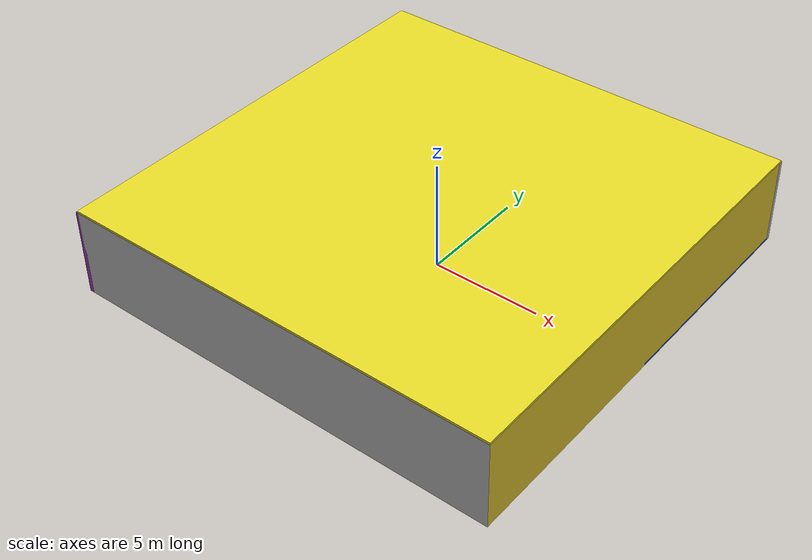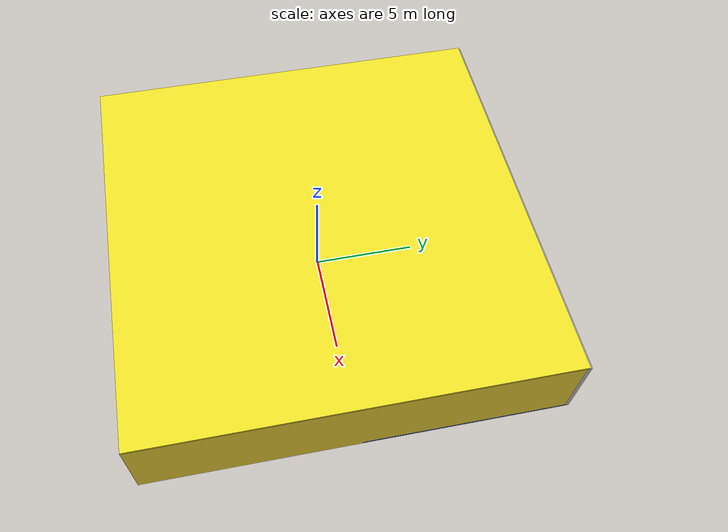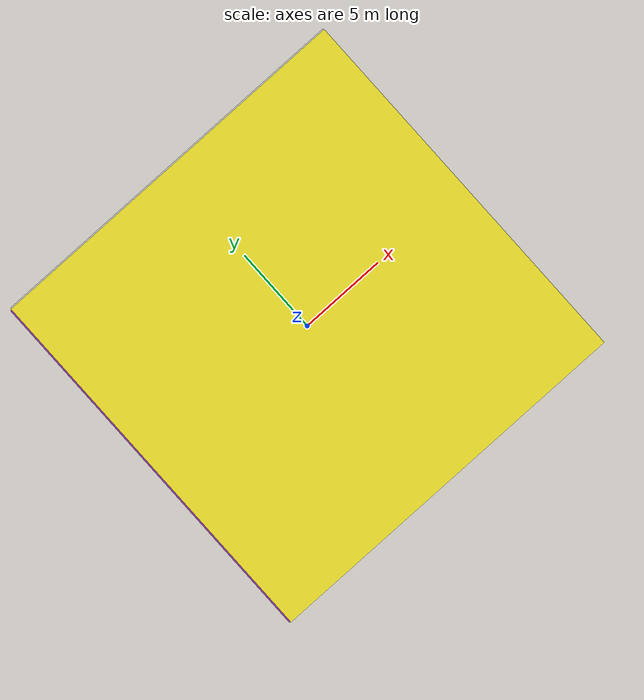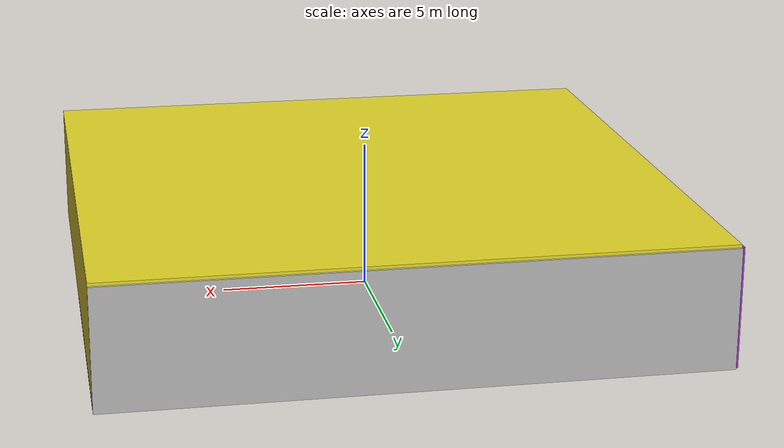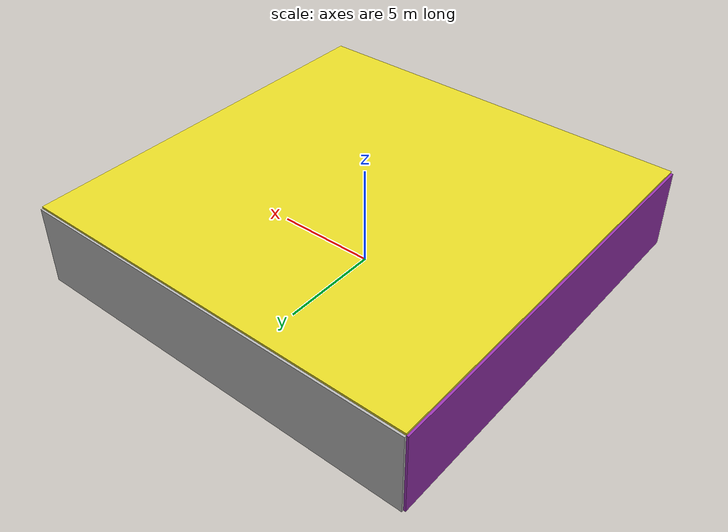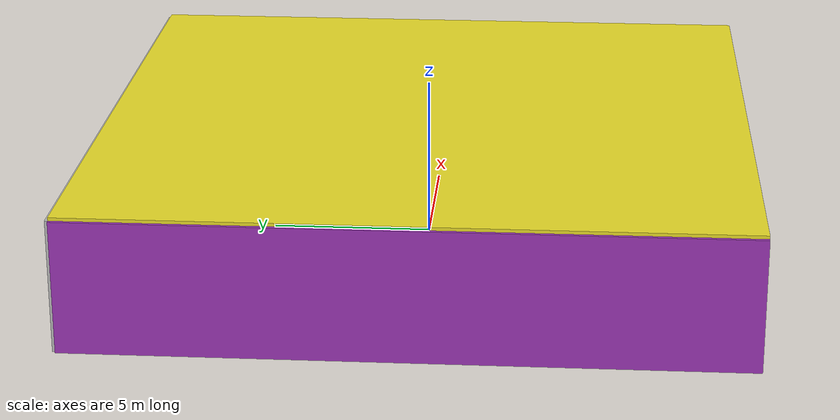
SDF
<sdf version="1.4">
 <world name="default">
  <physics type="ode">
   <max_step_size>0.001</max_step_size>
   <real_time_factor>1</real_time_factor>
   <real_time_update_rate>1000</real_time_update_rate>
   <gravity>0 0 -9.8</gravity>
  </physics>
  <scene><ambient>0.4 0.4 0.4 1</ambient><background>0.7 0.7 0.7 1</background><shadows>1</shadows></scene>
  <model name="Surrounding">
   <static>1</static>
   <link name="Ceiling">
    <collision name="Ceiling_Collision"><geometry><box><size>20 20 0.1</size></box></geometry></collision>
    <visual name="Ceiling_Visual">
     <geometry><box><size>20 20 0.1</size></box></geometry>
     <material>
      <script><uri>file://media/materials/scripts/gazebo.material</uri><name>Gazebo/YellowGlow</name></script>
     </material>
    </visual>
    <pose>0 0 4.05 0 0 0</pose>
   </link>
   <link name="Wall_South">
    <collision name="Wall_South_Collision">
     <geometry><box><size>20 0 4</size></box></geometry>
     <pose>0 0 2 0 -0 0</pose>
    </collision>
    <visual name="Wall_South_Visual">
     <pose>0 0 2 0 -0 0</pose>
     <geometry><box><size>20 0 4</size></box></geometry>
     <material>
      <script><uri>file://media/materials/scripts/gazebo.material</uri><name>Gazebo/PioneerBody</name></script>
     </material>
    </visual>
    <velocity_decay><linear>0</linear><angular>0</angular></velocity_decay>
    <pose>0 -10 0 0 -0 0</pose>
   </link>
   <link name="Wall_East">
    <collision name="Wall_21_Collision">
     <geometry><box><size>20 0 4</size></box></geometry>
     <pose>0 0 2 0 -0 0</pose>
    </collision>
    <visual name="Wall_21_Visual">
     <pose>0 0 2 0 -0 0</pose>
     <geometry><box><size>20 0 4</size></box></geometry>
     <material>
      <script><uri>file://media/materials/scripts/gazebo.material</uri><name>Gazebo/ZincYellow</name></script>
     </material>
    </visual>
    <velocity_decay><linear>0</linear><angular>0</angular></velocity_decay>
    <pose>10 0 0 0 -0 1.5708</pose>
   </link>
   <link name="Wall_North">
    <collision name="Wall_22_Collision">
     <geometry><box><size>20 0.2 4</size></box></geometry>
     <pose>0 0 2 0 -0 0</pose>
    </collision>
    <visual name="Wall_22_Visual">
     <pose>0 0 2 0 -0 0</pose>
     <geometry><box><size>20 0.2 4</size></box></geometry>
     <material>
      <script><uri>file://media/materials/scripts/gazebo.material</uri><name>Gazebo/PioneerBody</name></script>
     </material>
    </visual>
    <velocity_decay><linear>0</linear><angular>0</angular></velocity_decay>
    <pose>0 10 0 0 -0 0</pose>
   </link>
   <link name="Wall_West">
    <collision name="Wall_23_Collision">
     <geometry><box><size>20 0.2 4</size></box></geometry>
     <pose>0 0 2 0 -0 0</pose>
    </collision>
    <visual name="Wall_23_Visual">
     <pose>0 0 2 0 -0 0</pose>
     <geometry><box><size>20 0.2 4</size></box></geometry>
     <material>
      <script><uri>file://media/materials/scripts/gazebo.material</uri><name>Gazebo/PurpleGlow</name></script>
     </material>
    </visual>
    <velocity_decay><linear>0</linear><angular>0</angular></velocity_decay>
    <pose>-10 0 0 0 0 -1.5708</pose>
   </link>
   <link name="Ground_link">
    <collision name="collision">
     <pose>0 0 .05 0 -0 0</pose>
     <geometry><box><size>20 20 0.1</size></box></geometry>
    </collision>
    <visual name="visual">
     <pose>0 0 .05 0 -0 0</pose>
     <geometry><box><size>20 20 0.1</size></box></geometry>
     <material>
      <script><uri>file://media/materials/scripts/gazebo.material</uri><name>Gazebo/BlueGlow</name></script>
     </material>
    </visual>
   </link>
   <static>1</static>
  </model>
  <spherical_coordinates>
   <surface_model>EARTH_WGS84</surface_model>
   <latitude_deg>0</latitude_deg>
   <longitude_deg>0</longitude_deg>
   <elevation>0</elevation>
   <heading_deg>0</heading_deg>
  </spherical_coordinates>
  <light name="lightball_0" type="diffuse">
   <diffuse>0.8 0.8 0.8 1</diffuse>
   <specular>0.2 0.2 0.2 1</specular>
   <attenuation>
    <range>100</range>
    <constant>0.7</constant>
    <linear>0.01</linear>
    <quadratic>0.001</quadratic>
   </attenuation>
   <direction>-0.5 0.1 -0.9</direction>
   <pose>-4.06357872269 4.81119742207 2.45542483714 0 0 0</pose>
  </light>
  <light name="lightball_1" type="diffuse">
   <diffuse>0.8 0.8 0.8 1</diffuse>
   <specular>0.2 0.2 0.2 1</specular>
   <attenuation>
    <range>100</range>
    <constant>0.7</constant>
    <linear>0.01</linear>
    <quadratic>0.001</quadratic>
   </attenuation>
   <direction>-0.5 0.1 -0.9</direction>
   <pose>0.0498239606138 -8.23232550665 2.98327708059 0 0 0</pose>
  </light>
  <light name="lightball_2" type="diffuse">
   <diffuse>0.8 0.8 0.8 1</diffuse>
   <specular>0.2 0.2 0.2 1</specular>
   <attenuation>
    <range>100</range>
    <constant>0.7</constant>
    <linear>0.01</linear>
    <quadratic>0.001</quadratic>
   </attenuation>
   <direction>-0.5 0.1 -0.9</direction>
   <pose>-8.26036727893 2.2744855355 1.04495845208 0 0 0</pose>
  </light>
  <light name="lightball_3" type="diffuse">
   <diffuse>0.8 0.8 0.8 1</diffuse>
   <specular>0.2 0.2 0.2 1</specular>
   <attenuation>
    <range>100</range>
    <constant>0.7</constant>
    <linear>0.01</linear>
    <quadratic>0.001</quadratic>
   </attenuation>
   <direction>-0.5 0.1 -0.9</direction>
   <pose>-2.23651199024 2.16246653985 1.65789242768 0 0 0</pose>
  </light>
  <light name="lightball_4" type="diffuse">
   <diffuse>0.8 0.8 0.8 1</diffuse>
   <specular>0.2 0.2 0.2 1</specular>
   <attenuation>
    <range>100</range>
    <constant>0.7</constant>
    <linear>0.01</linear>
    <quadratic>0.001</quadratic>
   </attenuation>
   <direction>-0.5 0.1 -0.9</direction>
   <pose>-5.21547841118 -7.01531637489 1.51933147181 0 0 0</pose>
  </light>
  <light name="lightball_5" type="diffuse">
   <diffuse>0.8 0.8 0.8 1</diffuse>
   <specular>0.2 0.2 0.2 1</specular>
   <attenuation>
    <range>100</range>
    <constant>0.7</constant>
    <linear>0.01</linear>
    <quadratic>0.001</quadratic>
   </attenuation>
   <direction>-0.5 0.1 -0.9</direction>
   <pose>-1.48083269419 6.2396507713 1.72905396308 0 0 0</pose>
  </light>
  <light name="lightball_6" type="diffuse">
   <diffuse>0.8 0.8 0.8 1</diffuse>
   <specular>0.2 0.2 0.2 1</specular>
   <attenuation>
    <range>100</range>
    <constant>0.7</constant>
    <linear>0.01</linear>
    <quadratic>0.001</quadratic>
   </attenuation>
   <direction>-0.5 0.1 -0.9</direction>
   <pose>6.55010611293 -3.95996402221 3.19540030901 0 0 0</pose>
  </light>
  <include><uri>model://table</uri><pose>-4.47354207421 3.75586034728 0 0 0 1.55868722325</pose></include>
  <include><uri>model://cabinet</uri><pose>-0.959122940419 -8.66726946815 0 0 0 1.40096820306</pose></include>
 </world>
</sdf>

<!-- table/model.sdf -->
<sdf version="1.5">
  <model name="table">
    <static>true</static>
    <link name="link">
      <collision name="surface">
        <pose>0 0 1.0 0 0 0</pose>
        <geometry>
          <box>
            <size>1.5 0.8 0.03</size>
          </box>
        </geometry>
        <surface>
          <friction>
            <ode>
              <mu>0.6</mu>
              <mu2>0.6</mu2>
            </ode>
          </friction>
        </surface>
      </collision>
      <visual name="visual1">
        <pose>0 0 1.0 0 0 0</pose>
        <geometry>
          <box>
            <size>1.5 0.8 0.03</size>
          </box>
        </geometry>
        <material>
          <script>
            <uri>model://media/materials/scripts/gazebo.material</uri>
            <name>Gazebo/Wood</name>
          </script>
        </material>
      </visual>
      <collision name="front_left_leg">
        <pose>0.68 0.38 0.5 0 0 0</pose>
        <geometry>
          <cylinder>
            <radius>0.02</radius>
            <length>1.0</length>
          </cylinder>
        </geometry>
      </collision>
      <visual name="front_left_leg">
        <pose>0.68 0.38 0.5 0 0 0</pose>
        <geometry>
          <cylinder>
            <radius>0.02</radius>
            <length>1.0</length>
          </cylinder>
        </geometry>
        <material>
          <script>
            <uri>model://media/materials/scripts/gazebo.material</uri>
            <name>Gazebo/Grey</name>
          </script>
        </material>
      </visual>
      <collision name="front_right_leg">
        <pose>0.68 -0.38 0.5 0 0 0</pose>
        <geometry>
          <cylinder>
            <radius>0.02</radius>
            <length>1.0</length>
          </cylinder>
        </geometry>
      </collision>
      <visual name="front_right_leg">
        <pose>0.68 -0.38 0.5 0 0 0</pose>
        <geometry>
          <cylinder>
            <radius>0.02</radius>
            <length>1.0</length>
          </cylinder>
        </geometry>
        <material>
          <script>
            <uri>model://media/materials/scripts/gazebo.material</uri>
            <name>Gazebo/Grey</name>
          </script>
        </material>
      </visual>
      <collision name="back_right_leg">
        <pose>-0.68 -0.38 0.5 0 0 0</pose>
        <geometry>
          <cylinder>
            <radius>0.02</radius>
            <length>1.0</length>
          </cylinder>
        </geometry>
      </collision>
      <visual name="back_right_leg">
        <pose>-0.68 -0.38 0.5 0 0 0</pose>
        <geometry>
          <cylinder>
            <radius>0.02</radius>
            <length>1.0</length>
          </cylinder>
        </geometry>
        <material>
          <script>
            <uri>model://media/materials/scripts/gazebo.material</uri>
            <name>Gazebo/Grey</name>
          </script>
        </material>
      </visual>
      <collision name="back_left_leg">
        <pose>-0.68 0.38 0.5 0 0 0</pose>
        <geometry>
          <cylinder>
            <radius>0.02</radius>
            <length>1.0</length>
          </cylinder>
        </geometry>
      </collision>
      <visual name="back_left_leg">
        <pose>-0.68 0.38 0.5 0 0 0</pose>
        <geometry>
          <cylinder>
            <radius>0.02</radius>
            <length>1.0</length>
          </cylinder>
        </geometry>
        <material>
          <script>
            <uri>model://media/materials/scripts/gazebo.material</uri>
            <name>Gazebo/Grey</name>
          </script>
        </material>
      </visual>
    </link>
  </model>
</sdf>

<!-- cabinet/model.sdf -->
<sdf version="1.5">
  <model name="cabinet">
    <static>true</static>
    <link name="cabinet_bottom_plate">
      <inertial>
        <pose>0 0 -1 0 0 0</pose>
        <inertia>
          <ixx>2.050000</ixx>
          <ixy>0</ixy>
          <ixz>0</ixz>
          <iyy>2.050000</iyy>
          <iyz>0</iyz>
          <izz>2.050000</izz>
        </inertia>
        <mass>25.000000</mass>
      </inertial>
      <collision name="cabinet_bottom_plate_geom">
        <pose>0 0 0.010000 0 0 0</pose>
        <geometry>
          <box>
            <size>0.450000 0.450000 0.020000</size>
          </box>
        </geometry>
      </collision>
      <visual name="cabinet_bottom_plate_geom_visual">
        <pose>0 0 0.010000 0 0 0</pose>
        <geometry>
          <box>
            <size>0.450000 0.450000 0.020000</size>
          </box>
        </geometry>
        <material>
          <script>
            <uri>model://media/materials/scripts/gazebo.material</uri>
            <name>Gazebo/Wood</name>
          </script>
        </material>
      </visual>
      <collision name="cabinet_bottom_plate_geom_cabinet_back_plate">
        <pose>0.235000 0 0.510000 0 0 0</pose>
        <geometry>
          <box>
            <size>0.020000 0.450000 1.020000</size>
          </box>
        </geometry>
      </collision>
      <visual name="cabinet_bottom_plate_geom_cabinet_back_plate_visual">
        <pose>0.235000 0 0.510000 0 0 0</pose>
        <geometry>
          <box>
            <size>0.020000 0.450000 1.020000</size>
          </box>
        </geometry>
        <material>
          <script>
            <uri>model://media/materials/scripts/gazebo.material</uri>
            <name>Gazebo/Wood</name>
          </script>
        </material>
      </visual>
      <collision name="cabinet_bottom_plate_geom_cabinet_left_plate">
        <pose>0 0.235000 0.510000 0 0 0</pose>
        <geometry>
          <box>
            <size>0.450000 0.020000 1.020000</size>
          </box>
        </geometry>
      </collision>
      <visual name="cabinet_bottom_plate_geom_cabinet_left_plate_visual">
        <pose>0 0.235000 0.510000 0 0 0</pose>
        <geometry>
          <box>
            <size>0.450000 0.020000 1.020000</size>
          </box>
        </geometry>
        <material>
          <script>
            <uri>model://media/materials/scripts/gazebo.material</uri>
            <name>Gazebo/Wood</name>
          </script>
        </material>
      </visual>
      <collision name="cabinet_bottom_plate_geom_cabinet_middle_plate">
        <pose>0 0 0.510000 0 0 0</pose>
        <geometry>
          <box>
            <size>0.450000 0.450000 0.020000</size>
          </box>
        </geometry>
      </collision>
      <visual name="cabinet_bottom_plate_geom_cabinet_middle_plate_visual">
        <pose>0 0 0.510000 0 0 0</pose>
        <geometry>
          <box>
            <size>0.450000 0.450000 0.020000</size>
          </box>
        </geometry>
        <material>
          <script>
            <uri>model://media/materials/scripts/gazebo.material</uri>
            <name>Gazebo/Wood</name>
          </script>
        </material>
      </visual>
      <collision name="cabinet_bottom_plate_geom_cabinet_right_plate">
        <pose>0 -0.235000 0.510000 0 0 0</pose>
        <geometry>
          <box>
            <size>0.450000 0.020000 1.020000</size>
          </box>
        </geometry>
      </collision>
      <visual name="cabinet_bottom_plate_geom_cabinet_right_plate_visual">
        <pose>0 -0.235000 0.510000 0 0 0</pose>
        <geometry>
          <box>
            <size>0.450000 0.020000 1.020000</size>
          </box>
        </geometry>
        <material>
          <script>
            <uri>model://media/materials/scripts/gazebo.material</uri>
            <name>Gazebo/Wood</name>
          </script>
        </material>
      </visual>
      <collision name="cabinet_bottom_plate_geom_cabinet_top_plate">
        <pose>0 0 1.010000 0 0 0</pose>
        <geometry>
          <box>
            <size>0.450000 0.450000 0.020000</size>
          </box>
        </geometry>
      </collision>
      <visual name="cabinet_bottom_plate_geom_cabinet_top_plate_visual">
        <pose>0 0 1.010000 0 0 0</pose>
        <geometry>
          <box>
            <size>0.450000 0.450000 0.020000</size>
          </box>
        </geometry>
        <material>
          <script>
            <uri>model://media/materials/scripts/gazebo.material</uri>
            <name>Gazebo/Wood</name>
          </script>
        </material>
      </visual>
    </link>
  </model>
</sdf>
